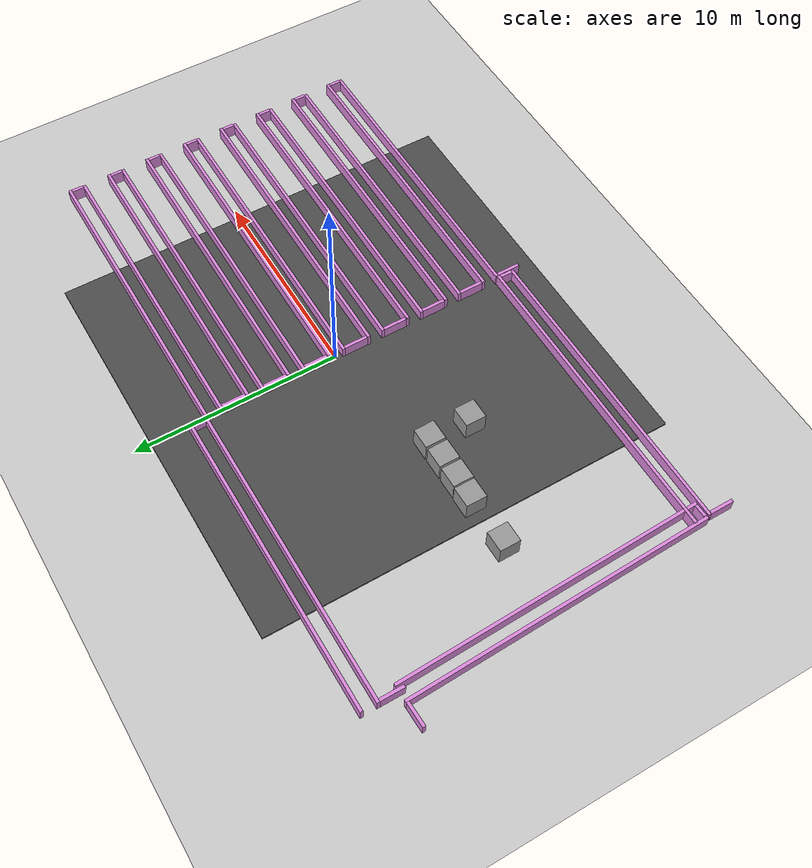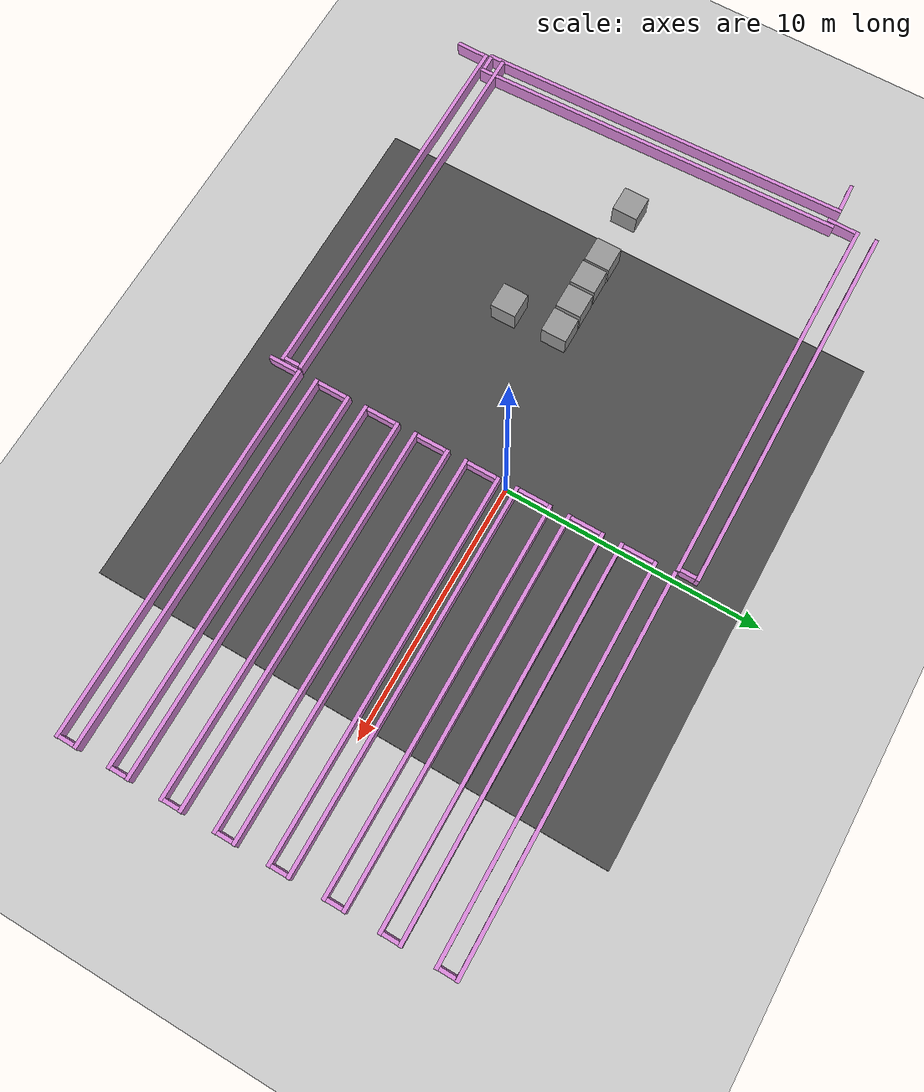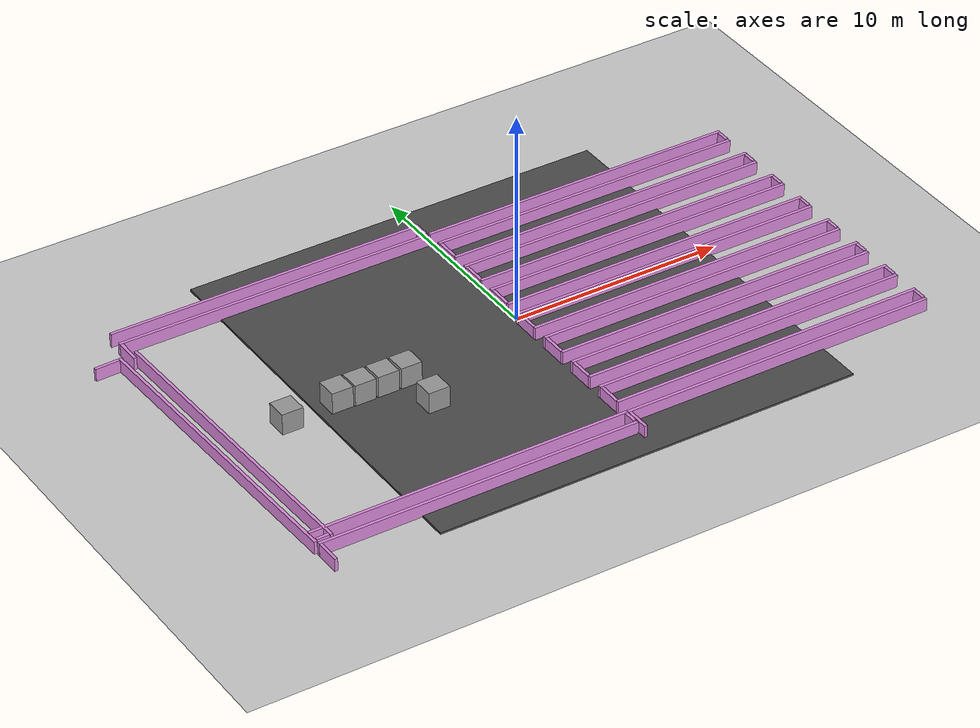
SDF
<sdf version="1.7">
 <world name="default">
  <light name="sun" type="directional">
   <pose>0 0 10 0 -0 0</pose>
   <diffuse>0.8 0.8 0.8 1</diffuse>
   <specular>0.2 0.2 0.2 1</specular>
   <attenuation>
    <range>1000</range>
    <constant>0.9</constant>
    <linear>0.01</linear>
    <quadratic>0.001</quadratic>
   </attenuation>
   <direction>-0.5 0.1 -0.9</direction>
   <spot><inner_angle>0</inner_angle><outer_angle>0</outer_angle><falloff>0</falloff></spot>
  </light>
  <model name="ground_plane">
   <static>1</static>
   <link name="link">
    <collision name="collision">
     <geometry><plane><normal>0 0 1</normal><size>100 100</size></plane></geometry>
     <surface>
      <contact><collide_bitmask>65535</collide_bitmask></contact>
      <friction><ode><mu>100</mu><mu2>50</mu2></ode></friction>
     </surface>
    </collision>
    <visual name="visual">
     <cast_shadows>0</cast_shadows>
     <geometry><plane><normal>0 0 1</normal><size>100 100</size></plane></geometry>
     <material>
      <script><uri>file://media/materials/scripts/gazebo.material</uri><name>Gazebo/Grey</name></script>
     </material>
    </visual>
   </link>
  </model>
  <gravity>0 0 -9.8</gravity>
  <magnetic_field>6e-06 2.3e-05 -4.2e-05</magnetic_field>
  <atmosphere type="adiabatic"/>
  <physics type="ode">
   <max_step_size>0.001</max_step_size>
   <real_time_factor>1</real_time_factor>
   <real_time_update_rate>1000</real_time_update_rate>
  </physics>
  <scene><ambient>0.4 0.4 0.4 1</ambient><background>0.7 0.7 0.7 1</background><shadows>1</shadows></scene>
  <audio><device>default</device></audio>
  <spherical_coordinates>
   <surface_model>EARTH_WGS84</surface_model>
   <latitude_deg>0</latitude_deg>
   <longitude_deg>0</longitude_deg>
   <elevation>0</elevation>
   <heading_deg>0</heading_deg>
  </spherical_coordinates>
  <model name="60cm_koridor">
   <pose>7.323 -0.566065 0 0 -0 0</pose>
   <link name="Wall_0">
    <collision name="Wall_0_Collision">
     <geometry><box><size>0.600141 0.15 0.65</size></box></geometry>
     <pose>0 0 0.325 0 -0 0</pose>
    </collision>
    <visual name="Wall_0_Visual">
     <pose>0 0 0.325 0 -0 0</pose>
     <geometry><box><size>0.600141 0.15 0.65</size></box></geometry>
     <material>
      <script><uri>file://media/materials/scripts/gazebo.material</uri><name>Gazebo/Grey</name></script>
      <ambient>0.862745 0.541176 0.866667 1</ambient>
     </material>
     <meta><layer>0</layer></meta>
    </visual>
    <pose>7.4125 0.576065 0 0 -0 -1.57302</pose>
   </link>
   <link name="Wall_11">
    <collision name="Wall_11_Collision">
     <geometry><box><size>1.15626 0.15 0.6</size></box></geometry>
     <pose>0 0 0.3 0 -0 0</pose>
    </collision>
    <visual name="Wall_11_Visual">
     <pose>0 0 0.3 0 -0 0</pose>
     <geometry><box><size>1.15626 0.15 0.6</size></box></geometry>
     <material>
      <script><uri>file://media/materials/scripts/gazebo.material</uri><name>Gazebo/Grey</name></script>
      <ambient>0.862745 0.541176 0.866667 1</ambient>
     </material>
     <meta><layer>0</layer></meta>
    </visual>
    <pose>-7.422 -0.450935 0 0 -0 -1.5708</pose>
   </link>
   <link name="Wall_2">
    <collision name="Wall_2_Collision">
     <geometry><box><size>15 0.15 0.65</size></box></geometry>
     <pose>0 0 0.325 0 -0 0</pose>
    </collision>
    <visual name="Wall_2_Visual">
     <pose>0 0 0.325 0 -0 0</pose>
     <geometry><box><size>15 0.15 0.65</size></box></geometry>
     <material>
      <script><uri>file://media/materials/scripts/gazebo.material</uri><name>Gazebo/Grey</name></script>
      <ambient>0.862745 0.541176 0.866667 1</ambient>
     </material>
     <meta><layer>0</layer></meta>
    </visual>
    <pose>-0.002 0.954065 0 0 -0 3.14159</pose>
   </link>
   <link name="Wall_4">
    <collision name="Wall_4_Collision">
     <geometry><box><size>15 0.15 0.6</size></box></geometry>
     <pose>0 0 0.3 0 -0 0</pose>
    </collision>
    <visual name="Wall_4_Visual">
     <pose>0 0 0.3 0 -0 0</pose>
     <geometry><box><size>15 0.15 0.6</size></box></geometry>
     <material>
      <script><uri>file://media/materials/scripts/gazebo.material</uri><name>Gazebo/Grey</name></script>
      <ambient>0.862745 0.541176 0.866667 1</ambient>
     </material>
     <meta><layer>0</layer></meta>
    </visual>
    <pose>0.002 0.203065 0 0 -0 0</pose>
   </link>
   <static>1</static>
  </model>
  <model name="60cm_koridor_clone">
   <pose>7.3235 -2.63015 0 0 -0 0</pose>
   <link name="Wall_0">
    <collision name="Wall_0_Collision">
     <geometry><box><size>0.600141 0.15 0.65</size></box></geometry>
     <pose>0 0 0.325 0 -0 0</pose>
    </collision>
    <visual name="Wall_0_Visual">
     <pose>0 0 0.325 0 -0 0</pose>
     <geometry><box><size>0.600141 0.15 0.65</size></box></geometry>
     <material>
      <script><uri>file://media/materials/scripts/gazebo.material</uri><name>Gazebo/Grey</name></script>
      <ambient>0.862745 0.541176 0.866667 1</ambient>
     </material>
     <meta><layer>0</layer></meta>
    </visual>
    <pose>7.4125 0.576065 0 0 -0 -1.57302</pose>
   </link>
   <link name="Wall_11">
    <collision name="Wall_11_Collision">
     <geometry><box><size>1.15626 0.15 0.6</size></box></geometry>
     <pose>0 0 0.3 0 -0 0</pose>
    </collision>
    <visual name="Wall_11_Visual">
     <pose>0 0 0.3 0 -0 0</pose>
     <geometry><box><size>1.15626 0.15 0.6</size></box></geometry>
     <material>
      <script><uri>file://media/materials/scripts/gazebo.material</uri><name>Gazebo/Grey</name></script>
      <ambient>0.862745 0.541176 0.866667 1</ambient>
     </material>
     <meta><layer>0</layer></meta>
    </visual>
    <pose>-7.422 -0.450935 0 0 -0 -1.5708</pose>
   </link>
   <link name="Wall_2">
    <collision name="Wall_2_Collision">
     <geometry><box><size>15 0.15 0.65</size></box></geometry>
     <pose>0 0 0.325 0 -0 0</pose>
    </collision>
    <visual name="Wall_2_Visual">
     <pose>0 0 0.325 0 -0 0</pose>
     <geometry><box><size>15 0.15 0.65</size></box></geometry>
     <material>
      <script><uri>file://media/materials/scripts/gazebo.material</uri><name>Gazebo/Grey</name></script>
      <ambient>0.862745 0.541176 0.866667 1</ambient>
     </material>
     <meta><layer>0</layer></meta>
    </visual>
    <pose>-0.002 0.954065 0 0 -0 3.14159</pose>
   </link>
   <link name="Wall_4">
    <collision name="Wall_4_Collision">
     <geometry><box><size>15 0.15 0.6</size></box></geometry>
     <pose>0 0 0.3 0 -0 0</pose>
    </collision>
    <visual name="Wall_4_Visual">
     <pose>0 0 0.3 0 -0 0</pose>
     <geometry><box><size>15 0.15 0.6</size></box></geometry>
     <material>
      <script><uri>file://media/materials/scripts/gazebo.material</uri><name>Gazebo/Grey</name></script>
      <ambient>0.862745 0.541176 0.866667 1</ambient>
     </material>
     <meta><layer>0</layer></meta>
    </visual>
    <pose>0.002 0.203065 0 0 -0 0</pose>
   </link>
   <static>1</static>
  </model>
  <model name="60cm_koridor_clone_clone">
   <pose>7.3271 -4.69709 0 0 -0 0</pose>
   <link name="Wall_0">
    <collision name="Wall_0_Collision">
     <geometry><box><size>0.600141 0.15 0.65</size></box></geometry>
     <pose>0 0 0.325 0 -0 0</pose>
    </collision>
    <visual name="Wall_0_Visual">
     <pose>0 0 0.325 0 -0 0</pose>
     <geometry><box><size>0.600141 0.15 0.65</size></box></geometry>
     <material>
      <script><uri>file://media/materials/scripts/gazebo.material</uri><name>Gazebo/Grey</name></script>
      <ambient>0.862745 0.541176 0.866667 1</ambient>
     </material>
     <meta><layer>0</layer></meta>
    </visual>
    <pose>7.4125 0.576065 0 0 -0 -1.57302</pose>
   </link>
   <link name="Wall_11">
    <collision name="Wall_11_Collision">
     <geometry><box><size>1.15626 0.15 0.6</size></box></geometry>
     <pose>0 0 0.3 0 -0 0</pose>
    </collision>
    <visual name="Wall_11_Visual">
     <pose>0 0 0.3 0 -0 0</pose>
     <geometry><box><size>1.15626 0.15 0.6</size></box></geometry>
     <material>
      <script><uri>file://media/materials/scripts/gazebo.material</uri><name>Gazebo/Grey</name></script>
      <ambient>0.862745 0.541176 0.866667 1</ambient>
     </material>
     <meta><layer>0</layer></meta>
    </visual>
    <pose>-7.422 -0.450935 0 0 -0 -1.5708</pose>
   </link>
   <link name="Wall_2">
    <collision name="Wall_2_Collision">
     <geometry><box><size>15 0.15 0.65</size></box></geometry>
     <pose>0 0 0.325 0 -0 0</pose>
    </collision>
    <visual name="Wall_2_Visual">
     <pose>0 0 0.325 0 -0 0</pose>
     <geometry><box><size>15 0.15 0.65</size></box></geometry>
     <material>
      <script><uri>file://media/materials/scripts/gazebo.material</uri><name>Gazebo/Grey</name></script>
      <ambient>0.862745 0.541176 0.866667 1</ambient>
     </material>
     <meta><layer>0</layer></meta>
    </visual>
    <pose>-0.002 0.954065 0 0 -0 3.14159</pose>
   </link>
   <link name="Wall_4">
    <collision name="Wall_4_Collision">
     <geometry><box><size>15 0.15 0.6</size></box></geometry>
     <pose>0 0 0.3 0 -0 0</pose>
    </collision>
    <visual name="Wall_4_Visual">
     <pose>0 0 0.3 0 -0 0</pose>
     <geometry><box><size>15 0.15 0.6</size></box></geometry>
     <material>
      <script><uri>file://media/materials/scripts/gazebo.material</uri><name>Gazebo/Grey</name></script>
      <ambient>0.862745 0.541176 0.866667 1</ambient>
     </material>
     <meta><layer>0</layer></meta>
    </visual>
    <pose>0.002 0.203065 0 0 -0 0</pose>
   </link>
   <static>1</static>
  </model>
  <model name="60cm_koridor_clone_clone_clone">
   <pose>7.3363 -6.75838 0 0 -0 0</pose>
   <link name="Wall_0">
    <collision name="Wall_0_Collision">
     <geometry><box><size>0.600141 0.15 0.65</size></box></geometry>
     <pose>0 0 0.325 0 -0 0</pose>
    </collision>
    <visual name="Wall_0_Visual">
     <pose>0 0 0.325 0 -0 0</pose>
     <geometry><box><size>0.600141 0.15 0.65</size></box></geometry>
     <material>
      <script><uri>file://media/materials/scripts/gazebo.material</uri><name>Gazebo/Grey</name></script>
      <ambient>0.862745 0.541176 0.866667 1</ambient>
     </material>
     <meta><layer>0</layer></meta>
    </visual>
    <pose>7.4125 0.576065 0 0 -0 -1.57302</pose>
   </link>
   <link name="Wall_11">
    <collision name="Wall_11_Collision">
     <geometry><box><size>1.15626 0.15 0.6</size></box></geometry>
     <pose>0 0 0.3 0 -0 0</pose>
    </collision>
    <visual name="Wall_11_Visual">
     <pose>0 0 0.3 0 -0 0</pose>
     <geometry><box><size>1.15626 0.15 0.6</size></box></geometry>
     <material>
      <script><uri>file://media/materials/scripts/gazebo.material</uri><name>Gazebo/Grey</name></script>
      <ambient>0.862745 0.541176 0.866667 1</ambient>
     </material>
     <meta><layer>0</layer></meta>
    </visual>
    <pose>-7.422 -0.450935 0 0 -0 -1.5708</pose>
   </link>
   <link name="Wall_2">
    <collision name="Wall_2_Collision">
     <geometry><box><size>15 0.15 0.65</size></box></geometry>
     <pose>0 0 0.325 0 -0 0</pose>
    </collision>
    <visual name="Wall_2_Visual">
     <pose>0 0 0.325 0 -0 0</pose>
     <geometry><box><size>15 0.15 0.65</size></box></geometry>
     <material>
      <script><uri>file://media/materials/scripts/gazebo.material</uri><name>Gazebo/Grey</name></script>
      <ambient>0.862745 0.541176 0.866667 1</ambient>
     </material>
     <meta><layer>0</layer></meta>
    </visual>
    <pose>-0.002 0.954065 0 0 -0 3.14159</pose>
   </link>
   <link name="Wall_4">
    <collision name="Wall_4_Collision">
     <geometry><box><size>15 0.15 0.6</size></box></geometry>
     <pose>0 0 0.3 0 -0 0</pose>
    </collision>
    <visual name="Wall_4_Visual">
     <pose>0 0 0.3 0 -0 0</pose>
     <geometry><box><size>15 0.15 0.6</size></box></geometry>
     <material>
      <script><uri>file://media/materials/scripts/gazebo.material</uri><name>Gazebo/Grey</name></script>
      <ambient>0.862745 0.541176 0.866667 1</ambient>
     </material>
     <meta><layer>0</layer></meta>
    </visual>
    <pose>0.002 0.203065 0 0 -0 0</pose>
   </link>
   <static>1</static>
  </model>
  <model name="60cm_koridor_clone_clone_clone_clone">
   <pose>7.3429 -8.82832 0 0 -0 0</pose>
   <link name="Wall_0">
    <collision name="Wall_0_Collision">
     <geometry><box><size>0.600141 0.15 0.65</size></box></geometry>
     <pose>0 0 0.325 0 -0 0</pose>
    </collision>
    <visual name="Wall_0_Visual">
     <pose>0 0 0.325 0 -0 0</pose>
     <geometry><box><size>0.600141 0.15 0.65</size></box></geometry>
     <material>
      <script><uri>file://media/materials/scripts/gazebo.material</uri><name>Gazebo/Grey</name></script>
      <ambient>0.862745 0.541176 0.866667 1</ambient>
     </material>
     <meta><layer>0</layer></meta>
    </visual>
    <pose>7.4125 0.576065 0 0 -0 -1.57302</pose>
   </link>
   <link name="Wall_11">
    <collision name="Wall_11_Collision">
     <geometry><box><size>1.15626 0.15 0.6</size></box></geometry>
     <pose>0 0 0.3 0 -0 0</pose>
    </collision>
    <visual name="Wall_11_Visual">
     <pose>0 0 0.3 0 -0 0</pose>
     <geometry><box><size>1.15626 0.15 0.6</size></box></geometry>
     <material>
      <script><uri>file://media/materials/scripts/gazebo.material</uri><name>Gazebo/Grey</name></script>
      <ambient>0.862745 0.541176 0.866667 1</ambient>
     </material>
     <meta><layer>0</layer></meta>
    </visual>
    <pose>-7.422 -0.450935 0 0 -0 -1.5708</pose>
   </link>
   <link name="Wall_2">
    <collision name="Wall_2_Collision">
     <geometry><box><size>15 0.15 0.65</size></box></geometry>
     <pose>0 0 0.325 0 -0 0</pose>
    </collision>
    <visual name="Wall_2_Visual">
     <pose>0 0 0.325 0 -0 0</pose>
     <geometry><box><size>15 0.15 0.65</size></box></geometry>
     <material>
      <script><uri>file://media/materials/scripts/gazebo.material</uri><name>Gazebo/Grey</name></script>
      <ambient>0.862745 0.541176 0.866667 1</ambient>
     </material>
     <meta><layer>0</layer></meta>
    </visual>
    <pose>-0.002 0.954065 0 0 -0 3.14159</pose>
   </link>
   <link name="Wall_4">
    <collision name="Wall_4_Collision">
     <geometry><box><size>15 0.15 0.6</size></box></geometry>
     <pose>0 0 0.3 0 -0 0</pose>
    </collision>
    <visual name="Wall_4_Visual">
     <pose>0 0 0.3 0 -0 0</pose>
     <geometry><box><size>15 0.15 0.6</size></box></geometry>
     <material>
      <script><uri>file://media/materials/scripts/gazebo.material</uri><name>Gazebo/Grey</name></script>
      <ambient>0.862745 0.541176 0.866667 1</ambient>
     </material>
     <meta><layer>0</layer></meta>
    </visual>
    <pose>0.002 0.203065 0 0 -0 0</pose>
   </link>
   <static>1</static>
  </model>
  <model name="60cm_koridor_clone_0">
   <pose>7.3114 1.50377 0 0 -0 0</pose>
   <link name="Wall_0">
    <collision name="Wall_0_Collision">
     <geometry><box><size>0.600141 0.15 0.65</size></box></geometry>
     <pose>0 0 0.325 0 -0 0</pose>
    </collision>
    <visual name="Wall_0_Visual">
     <pose>0 0 0.325 0 -0 0</pose>
     <geometry><box><size>0.600141 0.15 0.65</size></box></geometry>
     <material>
      <script><uri>file://media/materials/scripts/gazebo.material</uri><name>Gazebo/Grey</name></script>
      <ambient>0.862745 0.541176 0.866667 1</ambient>
     </material>
     <meta><layer>0</layer></meta>
    </visual>
    <pose>7.4125 0.576065 0 0 -0 -1.57302</pose>
   </link>
   <link name="Wall_11">
    <collision name="Wall_11_Collision">
     <geometry><box><size>1.15626 0.15 0.6</size></box></geometry>
     <pose>0 0 0.3 0 -0 0</pose>
    </collision>
    <visual name="Wall_11_Visual">
     <pose>0 0 0.3 0 -0 0</pose>
     <geometry><box><size>1.15626 0.15 0.6</size></box></geometry>
     <material>
      <script><uri>file://media/materials/scripts/gazebo.material</uri><name>Gazebo/Grey</name></script>
      <ambient>0.862745 0.541176 0.866667 1</ambient>
     </material>
     <meta><layer>0</layer></meta>
    </visual>
    <pose>-7.422 -0.450935 0 0 -0 -1.5708</pose>
   </link>
   <link name="Wall_2">
    <collision name="Wall_2_Collision">
     <geometry><box><size>15 0.15 0.65</size></box></geometry>
     <pose>0 0 0.325 0 -0 0</pose>
    </collision>
    <visual name="Wall_2_Visual">
     <pose>0 0 0.325 0 -0 0</pose>
     <geometry><box><size>15 0.15 0.65</size></box></geometry>
     <material>
      <script><uri>file://media/materials/scripts/gazebo.material</uri><name>Gazebo/Grey</name></script>
      <ambient>0.862745 0.541176 0.866667 1</ambient>
     </material>
     <meta><layer>0</layer></meta>
    </visual>
    <pose>-0.002 0.954065 0 0 -0 3.14159</pose>
   </link>
   <link name="Wall_4">
    <collision name="Wall_4_Collision">
     <geometry><box><size>15 0.15 0.6</size></box></geometry>
     <pose>0 0 0.3 0 -0 0</pose>
    </collision>
    <visual name="Wall_4_Visual">
     <pose>0 0 0.3 0 -0 0</pose>
     <geometry><box><size>15 0.15 0.6</size></box></geometry>
     <material>
      <script><uri>file://media/materials/scripts/gazebo.material</uri><name>Gazebo/Grey</name></script>
      <ambient>0.862745 0.541176 0.866667 1</ambient>
     </material>
     <meta><layer>0</layer></meta>
    </visual>
    <pose>0.002 0.203065 0 0 -0 0</pose>
   </link>
   <static>1</static>
  </model>
  <model name="60cm_koridor_clone_0_clone">
   <pose>7.3029 3.56758 0 0 -0 0</pose>
   <link name="Wall_0">
    <collision name="Wall_0_Collision">
     <geometry><box><size>0.600141 0.15 0.65</size></box></geometry>
     <pose>0 0 0.325 0 -0 0</pose>
    </collision>
    <visual name="Wall_0_Visual">
     <pose>0 0 0.325 0 -0 0</pose>
     <geometry><box><size>0.600141 0.15 0.65</size></box></geometry>
     <material>
      <script><uri>file://media/materials/scripts/gazebo.material</uri><name>Gazebo/Grey</name></script>
      <ambient>0.862745 0.541176 0.866667 1</ambient>
     </material>
     <meta><layer>0</layer></meta>
    </visual>
    <pose>7.4125 0.576065 0 0 -0 -1.57302</pose>
   </link>
   <link name="Wall_11">
    <collision name="Wall_11_Collision">
     <geometry><box><size>1.15626 0.15 0.6</size></box></geometry>
     <pose>0 0 0.3 0 -0 0</pose>
    </collision>
    <visual name="Wall_11_Visual">
     <pose>0 0 0.3 0 -0 0</pose>
     <geometry><box><size>1.15626 0.15 0.6</size></box></geometry>
     <material>
      <script><uri>file://media/materials/scripts/gazebo.material</uri><name>Gazebo/Grey</name></script>
      <ambient>0.862745 0.541176 0.866667 1</ambient>
     </material>
     <meta><layer>0</layer></meta>
    </visual>
    <pose>-7.422 -0.450935 0 0 -0 -1.5708</pose>
   </link>
   <link name="Wall_2">
    <collision name="Wall_2_Collision">
     <geometry><box><size>15 0.15 0.65</size></box></geometry>
     <pose>0 0 0.325 0 -0 0</pose>
    </collision>
    <visual name="Wall_2_Visual">
     <pose>0 0 0.325 0 -0 0</pose>
     <geometry><box><size>15 0.15 0.65</size></box></geometry>
     <material>
      <script><uri>file://media/materials/scripts/gazebo.material</uri><name>Gazebo/Grey</name></script>
      <ambient>0.862745 0.541176 0.866667 1</ambient>
     </material>
     <meta><layer>0</layer></meta>
    </visual>
    <pose>-0.002 0.954065 0 0 -0 3.14159</pose>
   </link>
   <link name="Wall_4">
    <collision name="Wall_4_Collision">
     <geometry><box><size>15 0.15 0.6</size></box></geometry>
     <pose>0 0 0.3 0 -0 0</pose>
    </collision>
    <visual name="Wall_4_Visual">
     <pose>0 0 0.3 0 -0 0</pose>
     <geometry><box><size>15 0.15 0.6</size></box></geometry>
     <material>
      <script><uri>file://media/materials/scripts/gazebo.material</uri><name>Gazebo/Grey</name></script>
      <ambient>0.862745 0.541176 0.866667 1</ambient>
     </material>
     <meta><layer>0</layer></meta>
    </visual>
    <pose>0.002 0.203065 0 0 -0 0</pose>
   </link>
   <static>1</static>
  </model>
  <model name="60cm_koridor_clone_0_clone_clone">
   <pose>7.3055 5.6327 0 0 -0 0</pose>
   <link name="Wall_0">
    <collision name="Wall_0_Collision">
     <geometry><box><size>0.600141 0.15 0.65</size></box></geometry>
     <pose>0 0 0.325 0 -0 0</pose>
    </collision>
    <visual name="Wall_0_Visual">
     <pose>0 0 0.325 0 -0 0</pose>
     <geometry><box><size>0.600141 0.15 0.65</size></box></geometry>
     <material>
      <script><uri>file://media/materials/scripts/gazebo.material</uri><name>Gazebo/Grey</name></script>
      <ambient>0.862745 0.541176 0.866667 1</ambient>
     </material>
     <meta><layer>0</layer></meta>
    </visual>
    <pose>7.4125 0.576065 0 0 -0 -1.57302</pose>
   </link>
   <link name="Wall_11">
    <collision name="Wall_11_Collision">
     <geometry><box><size>1.15626 0.15 0.6</size></box></geometry>
     <pose>0 0 0.3 0 -0 0</pose>
    </collision>
    <visual name="Wall_11_Visual">
     <pose>0 0 0.3 0 -0 0</pose>
     <geometry><box><size>1.15626 0.15 0.6</size></box></geometry>
     <material>
      <script><uri>file://media/materials/scripts/gazebo.material</uri><name>Gazebo/Grey</name></script>
      <ambient>0.862745 0.541176 0.866667 1</ambient>
     </material>
     <meta><layer>0</layer></meta>
    </visual>
    <pose>-7.422 -0.450935 0 0 -0 -1.5708</pose>
   </link>
   <link name="Wall_2">
    <collision name="Wall_2_Collision">
     <geometry><box><size>15 0.15 0.65</size></box></geometry>
     <pose>0 0 0.325 0 -0 0</pose>
    </collision>
    <visual name="Wall_2_Visual">
     <pose>0 0 0.325 0 -0 0</pose>
     <geometry><box><size>15 0.15 0.65</size></box></geometry>
     <material>
      <script><uri>file://media/materials/scripts/gazebo.material</uri><name>Gazebo/Grey</name></script>
      <ambient>0.862745 0.541176 0.866667 1</ambient>
     </material>
     <meta><layer>0</layer></meta>
    </visual>
    <pose>-0.002 0.954065 0 0 -0 3.14159</pose>
   </link>
   <link name="Wall_4">
    <collision name="Wall_4_Collision">
     <geometry><box><size>15 0.15 0.6</size></box></geometry>
     <pose>0 0 0.3 0 -0 0</pose>
    </collision>
    <visual name="Wall_4_Visual">
     <pose>0 0 0.3 0 -0 0</pose>
     <geometry><box><size>15 0.15 0.6</size></box></geometry>
     <material>
      <script><uri>file://media/materials/scripts/gazebo.material</uri><name>Gazebo/Grey</name></script>
      <ambient>0.862745 0.541176 0.866667 1</ambient>
     </material>
     <meta><layer>0</layer></meta>
    </visual>
    <pose>0.002 0.203065 0 0 -0 0</pose>
   </link>
   <static>1</static>
  </model>
  <model name="60cm_koridor_clone_0_clone_clone_clone">
   <pose>-7.74155 6.42777 0 0 -0 0</pose>
   <link name="Wall_0">
    <collision name="Wall_0_Collision">
     <geometry><box><size>0.600141 0.15 0.65</size></box></geometry>
     <pose>0 0 0.325 0 -0 0</pose>
    </collision>
    <visual name="Wall_0_Visual">
     <pose>0 0 0.325 0 -0 0</pose>
     <geometry><box><size>0.600141 0.15 0.65</size></box></geometry>
     <material>
      <script><uri>file://media/materials/scripts/gazebo.material</uri><name>Gazebo/Grey</name></script>
      <ambient>0.862745 0.541176 0.866667 1</ambient>
     </material>
     <meta><layer>0</layer></meta>
    </visual>
    <pose>7.4125 0.576065 0 0 -0 -1.57302</pose>
   </link>
   <link name="Wall_11">
    <collision name="Wall_11_Collision">
     <geometry><box><size>1.15626 0.15 0.6</size></box></geometry>
     <pose>0 0 0.3 0 -0 0</pose>
    </collision>
    <visual name="Wall_11_Visual">
     <pose>0 0 0.3 0 -0 0</pose>
     <geometry><box><size>1.15626 0.15 0.6</size></box></geometry>
     <material>
      <script><uri>file://media/materials/scripts/gazebo.material</uri><name>Gazebo/Grey</name></script>
      <ambient>0.862745 0.541176 0.866667 1</ambient>
     </material>
     <meta><layer>0</layer></meta>
    </visual>
    <pose>-7.422 -0.450935 0 0 -0 -1.5708</pose>
   </link>
   <link name="Wall_2">
    <collision name="Wall_2_Collision">
     <geometry><box><size>15 0.15 0.65</size></box></geometry>
     <pose>0 0 0.325 0 -0 0</pose>
    </collision>
    <visual name="Wall_2_Visual">
     <pose>0 0 0.325 0 -0 0</pose>
     <geometry><box><size>15 0.15 0.65</size></box></geometry>
     <material>
      <script><uri>file://media/materials/scripts/gazebo.material</uri><name>Gazebo/Grey</name></script>
      <ambient>0.862745 0.541176 0.866667 1</ambient>
     </material>
     <meta><layer>0</layer></meta>
    </visual>
    <pose>-0.002 0.954065 0 0 -0 3.14159</pose>
   </link>
   <link name="Wall_4">
    <collision name="Wall_4_Collision">
     <geometry><box><size>15 0.15 0.6</size></box></geometry>
     <pose>0 0 0.3 0 -0 0</pose>
    </collision>
    <visual name="Wall_4_Visual">
     <pose>0 0 0.3 0 -0 0</pose>
     <geometry><box><size>15 0.15 0.6</size></box></geometry>
     <material>
      <script><uri>file://media/materials/scripts/gazebo.material</uri><name>Gazebo/Grey</name></script>
      <ambient>0.862745 0.541176 0.866667 1</ambient>
     </material>
     <meta><layer>0</layer></meta>
    </visual>
    <pose>0.002 0.203065 0 0 -0 0</pose>
   </link>
   <static>1</static>
  </model>
  <model name="60cm_koridor_clone_0_clone_clone_clone_clone">
   <pose>-7.69525 -9.61384 0 0 -0 0</pose>
   <link name="Wall_0">
    <collision name="Wall_0_Collision">
     <geometry><box><size>0.600141 0.15 0.65</size></box></geometry>
     <pose>0 0 0.325 0 -0 0</pose>
    </collision>
    <visual name="Wall_0_Visual">
     <pose>0 0 0.325 0 -0 0</pose>
     <geometry><box><size>0.600141 0.15 0.65</size></box></geometry>
     <material>
      <script><uri>file://media/materials/scripts/gazebo.material</uri><name>Gazebo/Grey</name></script>
      <ambient>0.862745 0.541176 0.866667 1</ambient>
     </material>
     <meta><layer>0</layer></meta>
    </visual>
    <pose>7.4125 0.576065 0 0 -0 -1.57302</pose>
   </link>
   <link name="Wall_11">
    <collision name="Wall_11_Collision">
     <geometry><box><size>1.15626 0.15 0.6</size></box></geometry>
     <pose>0 0 0.3 0 -0 0</pose>
    </collision>
    <visual name="Wall_11_Visual">
     <pose>0 0 0.3 0 -0 0</pose>
     <geometry><box><size>1.15626 0.15 0.6</size></box></geometry>
     <material>
      <script><uri>file://media/materials/scripts/gazebo.material</uri><name>Gazebo/Grey</name></script>
      <ambient>0.862745 0.541176 0.866667 1</ambient>
     </material>
     <meta><layer>0</layer></meta>
    </visual>
    <pose>-7.422 -0.450935 0 0 -0 -1.5708</pose>
   </link>
   <link name="Wall_2">
    <collision name="Wall_2_Collision">
     <geometry><box><size>15 0.15 0.65</size></box></geometry>
     <pose>0 0 0.325 0 -0 0</pose>
    </collision>
    <visual name="Wall_2_Visual">
     <pose>0 0 0.325 0 -0 0</pose>
     <geometry><box><size>15 0.15 0.65</size></box></geometry>
     <material>
      <script><uri>file://media/materials/scripts/gazebo.material</uri><name>Gazebo/Grey</name></script>
      <ambient>0.862745 0.541176 0.866667 1</ambient>
     </material>
     <meta><layer>0</layer></meta>
    </visual>
    <pose>-0.002 0.954065 0 0 -0 3.14159</pose>
   </link>
   <link name="Wall_4">
    <collision name="Wall_4_Collision">
     <geometry><box><size>15 0.15 0.6</size></box></geometry>
     <pose>0 0 0.3 0 -0 0</pose>
    </collision>
    <visual name="Wall_4_Visual">
     <pose>0 0 0.3 0 -0 0</pose>
     <geometry><box><size>15 0.15 0.6</size></box></geometry>
     <material>
      <script><uri>file://media/materials/scripts/gazebo.material</uri><name>Gazebo/Grey</name></script>
      <ambient>0.862745 0.541176 0.866667 1</ambient>
     </material>
     <meta><layer>0</layer></meta>
    </visual>
    <pose>0.002 0.203065 0 0 -0 0</pose>
   </link>
   <static>1</static>
  </model>
  <model name="60cm_koridor_clone_0_clone_clone_clone_clone_clone">
   <pose>-15.6687 -1.7802 0 0 0 -1.53857</pose>
   <link name="Wall_0">
    <collision name="Wall_0_Collision">
     <geometry><box><size>0.600141 0.15 0.65</size></box></geometry>
     <pose>0 0 0.325 0 -0 0</pose>
    </collision>
    <visual name="Wall_0_Visual">
     <pose>0 0 0.325 0 -0 0</pose>
     <geometry><box><size>0.600141 0.15 0.65</size></box></geometry>
     <material>
      <script><uri>file://media/materials/scripts/gazebo.material</uri><name>Gazebo/Grey</name></script>
      <ambient>0.862745 0.541176 0.866667 1</ambient>
     </material>
     <meta><layer>0</layer></meta>
    </visual>
    <pose>7.4125 0.576065 0 0 -0 -1.57302</pose>
   </link>
   <link name="Wall_11">
    <collision name="Wall_11_Collision">
     <geometry><box><size>1.15626 0.15 0.6</size></box></geometry>
     <pose>0 0 0.3 0 -0 0</pose>
    </collision>
    <visual name="Wall_11_Visual">
     <pose>0 0 0.3 0 -0 0</pose>
     <geometry><box><size>1.15626 0.15 0.6</size></box></geometry>
     <material>
      <script><uri>file://media/materials/scripts/gazebo.material</uri><name>Gazebo/Grey</name></script>
      <ambient>0.862745 0.541176 0.866667 1</ambient>
     </material>
     <meta><layer>0</layer></meta>
    </visual>
    <pose>-7.422 -0.450935 0 0 -0 -1.5708</pose>
   </link>
   <link name="Wall_2">
    <collision name="Wall_2_Collision">
     <geometry><box><size>15 0.15 0.65</size></box></geometry>
     <pose>0 0 0.325 0 -0 0</pose>
    </collision>
    <visual name="Wall_2_Visual">
     <pose>0 0 0.325 0 -0 0</pose>
     <geometry><box><size>15 0.15 0.65</size></box></geometry>
     <material>
      <script><uri>file://media/materials/scripts/gazebo.material</uri><name>Gazebo/Grey</name></script>
      <ambient>0.862745 0.541176 0.866667 1</ambient>
     </material>
     <meta><layer>0</layer></meta>
    </visual>
    <pose>-0.002 0.954065 0 0 -0 3.14159</pose>
   </link>
   <link name="Wall_4">
    <collision name="Wall_4_Collision">
     <geometry><box><size>15 0.15 0.6</size></box></geometry>
     <pose>0 0 0.3 0 -0 0</pose>
    </collision>
    <visual name="Wall_4_Visual">
     <pose>0 0 0.3 0 -0 0</pose>
     <geometry><box><size>15 0.15 0.6</size></box></geometry>
     <material>
      <script><uri>file://media/materials/scripts/gazebo.material</uri><name>Gazebo/Grey</name></script>
      <ambient>0.862745 0.541176 0.866667 1</ambient>
     </material>
     <meta><layer>0</layer></meta>
    </visual>
    <pose>0.002 0.203065 0 0 -0 0</pose>
   </link>
   <static>1</static>
  </model>
  <model name="unit_box">
   <pose>-6.17586 -1.22063 0.55 0 -0 0</pose>
   <link name="link">
    <inertial>
     <mass>1</mass>
     <inertia>
      <ixx>0.166667</ixx>
      <ixy>0</ixy>
      <ixz>0</ixz>
      <iyy>0.166667</iyy>
      <iyz>0</iyz>
      <izz>0.166667</izz>
     </inertia>
    </inertial>
    <collision name="collision"><geometry><box><size>1 1 1</size></box></geometry></collision>
    <visual name="visual">
     <geometry><box><size>1 1 1</size></box></geometry>
     <material>
      <script><name>Gazebo/Grey</name><uri>file://media/materials/scripts/gazebo.material</uri></script>
     </material>
    </visual>
   </link>
  </model>
  <model name="unit_box_clone">
   <pose>-7.28519 -1.22609 0.55 0 -0 0</pose>
   <link name="link">
    <inertial>
     <mass>1</mass>
     <inertia>
      <ixx>0.166667</ixx>
      <ixy>0</ixy>
      <ixz>0</ixz>
      <iyy>0.166667</iyy>
      <iyz>0</iyz>
      <izz>0.166667</izz>
     </inertia>
    </inertial>
    <collision name="collision"><geometry><box><size>1 1 1</size></box></geometry></collision>
    <visual name="visual">
     <geometry><box><size>1 1 1</size></box></geometry>
     <material>
      <script><name>Gazebo/Grey</name><uri>file://media/materials/scripts/gazebo.material</uri></script>
     </material>
    </visual>
   </link>
  </model>
  <model name="unit_box_clone_0">
   <pose>-8.38607 -1.23138 0.55 0 -0 0</pose>
   <link name="link">
    <inertial>
     <mass>1</mass>
     <inertia>
      <ixx>0.166667</ixx>
      <ixy>0</ixy>
      <ixz>0</ixz>
      <iyy>0.166667</iyy>
      <iyz>0</iyz>
      <izz>0.166667</izz>
     </inertia>
    </inertial>
    <collision name="collision"><geometry><box><size>1 1 1</size></box></geometry></collision>
    <visual name="visual">
     <geometry><box><size>1 1 1</size></box></geometry>
     <material>
      <script><name>Gazebo/Grey</name><uri>file://media/materials/scripts/gazebo.material</uri></script>
     </material>
    </visual>
   </link>
  </model>
  <model name="unit_box_clone_1">
   <pose>-9.46054 -1.20321 0.55 0 -0 0</pose>
   <link name="link">
    <inertial>
     <mass>1</mass>
     <inertia>
      <ixx>0.166667</ixx>
      <ixy>0</ixy>
      <ixz>0</ixz>
      <iyy>0.166667</iyy>
      <iyz>0</iyz>
      <izz>0.166667</izz>
     </inertia>
    </inertial>
    <collision name="collision"><geometry><box><size>1 1 1</size></box></geometry></collision>
    <visual name="visual">
     <geometry><box><size>1 1 1</size></box></geometry>
     <material>
      <script><name>Gazebo/Grey</name><uri>file://media/materials/scripts/gazebo.material</uri></script>
     </material>
    </visual>
   </link>
  </model>
  <model name="unit_box_clone_2">
   <pose>-11.8673 -1.29374 0.499995 0 -1e-05 0</pose>
   <link name="link">
    <inertial>
     <mass>1</mass>
     <inertia>
      <ixx>0.166667</ixx>
      <ixy>0</ixy>
      <ixz>0</ixz>
      <iyy>0.166667</iyy>
      <iyz>0</iyz>
      <izz>0.166667</izz>
     </inertia>
    </inertial>
    <collision name="collision"><geometry><box><size>1 1 1</size></box></geometry></collision>
    <visual name="visual">
     <geometry><box><size>1 1 1</size></box></geometry>
     <material>
      <script><name>Gazebo/Grey</name><uri>file://media/materials/scripts/gazebo.material</uri></script>
     </material>
    </visual>
   </link>
  </model>
  <model name="unit_box_0">
   <pose>-6.12873 -3.29693 0.55 -0 -0 -0</pose>
   <link name="link">
    <inertial>
     <mass>1</mass>
     <inertia>
      <ixx>0.166667</ixx>
      <ixy>0</ixy>
      <ixz>0</ixz>
      <iyy>0.166667</iyy>
      <iyz>0</iyz>
      <izz>0.166667</izz>
     </inertia>
    </inertial>
    <collision name="collision"><geometry><box><size>1 1 1</size></box></geometry></collision>
    <visual name="visual">
     <geometry><box><size>1 1 1</size></box></geometry>
     <material>
      <script><name>Gazebo/Grey</name><uri>file://media/materials/scripts/gazebo.material</uri></script>
     </material>
    </visual>
   </link>
  </model>
  <model name="asphalt_plane">
   <static>1</static>
   <link name="link">
    <collision name="collision"><geometry><box><size>20 20 0.1</size></box></geometry></collision>
    <visual name="visual">
     <cast_shadows>0</cast_shadows>
     <geometry><box><size>20 20 0.1</size></box></geometry>
     <material>
      <script>
       <uri>model://asphalt_plane/materials/scripts</uri>
       <uri>model://asphalt_plane/materials/textures</uri>
       <name>vrc/asphalt</name>
      </script>
     </material>
    </visual>
   </link>
   <pose>-0.441858 -0.80355 0 0 -0 0</pose>
  </model>
 </world>
</sdf>
